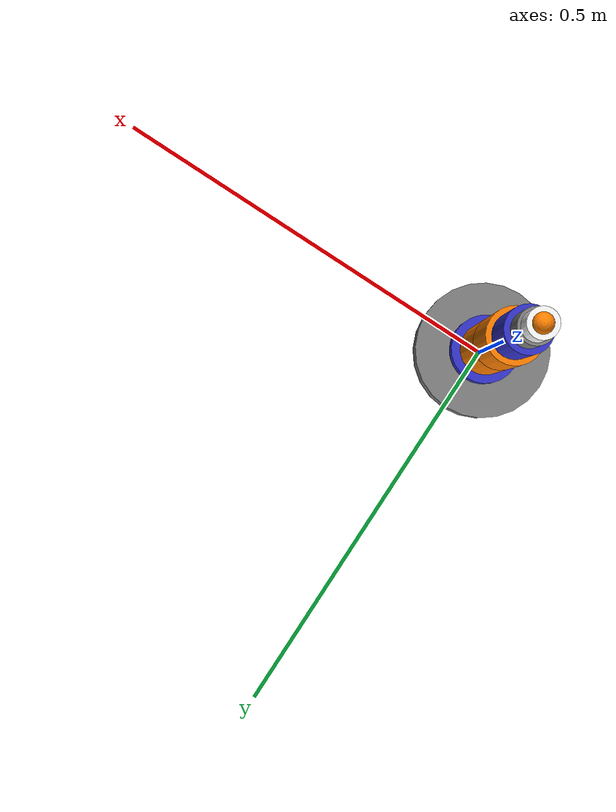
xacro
<?xml version="1.0"?>
<robot xmlns:xacro="http://www.ros.org/wiki/xacro" name="robot_arm">

  <!-- Robot Arm Properties -->
  <xacro:property name="base_height" value="0.1"/>
  <xacro:property name="base_radius" value="0.08"/>
  <xacro:property name="link1_length" value="0.3"/>
  <xacro:property name="link2_length" value="0.25"/>
  <xacro:property name="link3_length" value="0.2"/>
  <xacro:property name="link4_length" value="0.1"/>
  <xacro:property name="link5_length" value="0.08"/>
  <xacro:property name="link6_length" value="0.05"/>
  <xacro:property name="link_radius" value="0.03"/>
  <xacro:property name="joint_radius" value="0.04"/>
  <xacro:property name="joint_length" value="0.06"/>

  <!-- Materials -->
  <material name="grey">
    <color rgba="0.5 0.5 0.5 1.0"/>
  </material>
  <material name="blue">
    <color rgba="0.2 0.2 0.8 1.0"/>
  </material>
  <material name="orange">
    <color rgba="1.0 0.5 0.0 1.0"/>
  </material>
  <material name="white">
    <color rgba="1.0 1.0 1.0 1.0"/>
  </material>

  <!-- Base Link (Fixed to world) -->
  <link name="world"/>

  <joint name="world_joint" type="fixed">
    <parent link="world"/>
    <child link="base_link"/>
    <origin xyz="0 0 0" rpy="0 0 0"/>
  </joint>

  <link name="base_link">
    <visual>
      <geometry>
        <cylinder radius="${base_radius}" length="${base_height}"/>
      </geometry>
      <origin xyz="0 0 ${base_height/2}" rpy="0 0 0"/>
      <material name="grey"/>
    </visual>
    <collision>
      <geometry>
        <cylinder radius="${base_radius}" length="${base_height}"/>
      </geometry>
      <origin xyz="0 0 ${base_height/2}" rpy="0 0 0"/>
    </collision>
    <inertial>
      <mass value="5.0"/>
      <origin xyz="0 0 ${base_height/2}" rpy="0 0 0"/>
      <inertia ixx="0.01" ixy="0" ixz="0" iyy="0.01" iyz="0" izz="0.01"/>
    </inertial>
  </link>

  <!-- Joint 1: Base rotation (yaw) -->
  <joint name="joint1" type="revolute">
    <parent link="base_link"/>
    <child link="link1"/>
    <origin xyz="0 0 ${base_height}" rpy="0 0 0"/>
    <axis xyz="0 0 1"/>
    <limit lower="${-pi}" upper="${pi}" effort="100" velocity="1.0"/>
    <dynamics damping="0.5" friction="0.1"/>
  </joint>

  <link name="link1">
    <visual>
      <geometry>
        <cylinder radius="${joint_radius}" length="${joint_length}"/>
      </geometry>
      <origin xyz="0 0 ${joint_length/2}" rpy="0 0 0"/>
      <material name="blue"/>
    </visual>
    <collision>
      <geometry>
        <cylinder radius="${joint_radius}" length="${joint_length}"/>
      </geometry>
      <origin xyz="0 0 ${joint_length/2}" rpy="0 0 0"/>
    </collision>
    <inertial>
      <mass value="1.0"/>
      <origin xyz="0 0 ${joint_length/2}" rpy="0 0 0"/>
      <inertia ixx="0.001" ixy="0" ixz="0" iyy="0.001" iyz="0" izz="0.001"/>
    </inertial>
  </link>

  <!-- Joint 2: Shoulder (pitch) -->
  <joint name="joint2" type="revolute">
    <parent link="link1"/>
    <child link="link2"/>
    <origin xyz="0 0 ${joint_length}" rpy="0 0 0"/>
    <axis xyz="0 1 0"/>
    <limit lower="${-pi/2}" upper="${pi/2}" effort="100" velocity="1.0"/>
    <dynamics damping="0.5" friction="0.1"/>
  </joint>

  <link name="link2">
    <visual>
      <geometry>
        <cylinder radius="${link_radius}" length="${link1_length}"/>
      </geometry>
      <origin xyz="0 0 ${link1_length/2}" rpy="0 0 0"/>
      <material name="orange"/>
    </visual>
    <collision>
      <geometry>
        <cylinder radius="${link_radius}" length="${link1_length}"/>
      </geometry>
      <origin xyz="0 0 ${link1_length/2}" rpy="0 0 0"/>
    </collision>
    <inertial>
      <mass value="2.0"/>
      <origin xyz="0 0 ${link1_length/2}" rpy="0 0 0"/>
      <inertia ixx="0.02" ixy="0" ixz="0" iyy="0.02" iyz="0" izz="0.002"/>
    </inertial>
  </link>

  <!-- Joint 3: Elbow (pitch) -->
  <joint name="joint3" type="revolute">
    <parent link="link2"/>
    <child link="link3"/>
    <origin xyz="0 0 ${link1_length}" rpy="0 0 0"/>
    <axis xyz="0 1 0"/>
    <limit lower="${-pi*0.75}" upper="${pi*0.75}" effort="100" velocity="1.0"/>
    <dynamics damping="0.5" friction="0.1"/>
  </joint>

  <link name="link3">
    <visual>
      <geometry>
        <cylinder radius="${link_radius}" length="${link2_length}"/>
      </geometry>
      <origin xyz="0 0 ${link2_length/2}" rpy="0 0 0"/>
      <material name="orange"/>
    </visual>
    <collision>
      <geometry>
        <cylinder radius="${link_radius}" length="${link2_length}"/>
      </geometry>
      <origin xyz="0 0 ${link2_length/2}" rpy="0 0 0"/>
    </collision>
    <inertial>
      <mass value="1.5"/>
      <origin xyz="0 0 ${link2_length/2}" rpy="0 0 0"/>
      <inertia ixx="0.01" ixy="0" ixz="0" iyy="0.01" iyz="0" izz="0.001"/>
    </inertial>
  </link>

  <!-- Joint 4: Wrist 1 (pitch) -->
  <joint name="joint4" type="revolute">
    <parent link="link3"/>
    <child link="link4"/>
    <origin xyz="0 0 ${link2_length}" rpy="0 0 0"/>
    <axis xyz="0 1 0"/>
    <limit lower="${-pi}" upper="${pi}" effort="50" velocity="1.5"/>
    <dynamics damping="0.3" friction="0.1"/>
  </joint>

  <link name="link4">
    <visual>
      <geometry>
        <cylinder radius="${link_radius*0.8}" length="${link3_length}"/>
      </geometry>
      <origin xyz="0 0 ${link3_length/2}" rpy="0 0 0"/>
      <material name="blue"/>
    </visual>
    <collision>
      <geometry>
        <cylinder radius="${link_radius*0.8}" length="${link3_length}"/>
      </geometry>
      <origin xyz="0 0 ${link3_length/2}" rpy="0 0 0"/>
    </collision>
    <inertial>
      <mass value="0.8"/>
      <origin xyz="0 0 ${link3_length/2}" rpy="0 0 0"/>
      <inertia ixx="0.003" ixy="0" ixz="0" iyy="0.003" iyz="0" izz="0.0005"/>
    </inertial>
  </link>

  <!-- Joint 5: Wrist 2 (yaw) -->
  <joint name="joint5" type="revolute">
    <parent link="link4"/>
    <child link="link5"/>
    <origin xyz="0 0 ${link3_length}" rpy="0 0 0"/>
    <axis xyz="0 0 1"/>
    <limit lower="${-pi}" upper="${pi}" effort="30" velocity="2.0"/>
    <dynamics damping="0.2" friction="0.05"/>
  </joint>

  <link name="link5">
    <visual>
      <geometry>
        <cylinder radius="${link_radius*0.6}" length="${link4_length}"/>
      </geometry>
      <origin xyz="0 0 ${link4_length/2}" rpy="0 0 0"/>
      <material name="grey"/>
    </visual>
    <collision>
      <geometry>
        <cylinder radius="${link_radius*0.6}" length="${link4_length}"/>
      </geometry>
      <origin xyz="0 0 ${link4_length/2}" rpy="0 0 0"/>
    </collision>
    <inertial>
      <mass value="0.4"/>
      <origin xyz="0 0 ${link4_length/2}" rpy="0 0 0"/>
      <inertia ixx="0.001" ixy="0" ixz="0" iyy="0.001" iyz="0" izz="0.0002"/>
    </inertial>
  </link>

  <!-- Joint 6: Wrist 3 (roll) -->
  <joint name="joint6" type="revolute">
    <parent link="link5"/>
    <child link="link6"/>
    <origin xyz="0 0 ${link4_length}" rpy="0 0 0"/>
    <axis xyz="0 1 0"/>
    <limit lower="${-pi}" upper="${pi}" effort="20" velocity="2.5"/>
    <dynamics damping="0.1" friction="0.05"/>
  </joint>

  <link name="link6">
    <visual>
      <geometry>
        <cylinder radius="${link_radius*0.5}" length="${link5_length}"/>
      </geometry>
      <origin xyz="0 0 ${link5_length/2}" rpy="0 0 0"/>
      <material name="white"/>
    </visual>
    <collision>
      <geometry>
        <cylinder radius="${link_radius*0.5}" length="${link5_length}"/>
      </geometry>
      <origin xyz="0 0 ${link5_length/2}" rpy="0 0 0"/>
    </collision>
    <inertial>
      <mass value="0.2"/>
      <origin xyz="0 0 ${link5_length/2}" rpy="0 0 0"/>
      <inertia ixx="0.0003" ixy="0" ixz="0" iyy="0.0003" iyz="0" izz="0.0001"/>
    </inertial>
  </link>

  <!-- End Effector (Tool Center Point) -->
  <joint name="ee_joint" type="fixed">
    <parent link="link6"/>
    <child link="ee_link"/>
    <origin xyz="0 0 ${link5_length}" rpy="0 0 0"/>
  </joint>

  <link name="ee_link">
    <visual>
      <geometry>
        <sphere radius="0.01"/>
      </geometry>
      <material name="orange"/>
    </visual>
  </link>

  <!-- Include Gazebo-specific elements -->
  <xacro:include filename="$(find robot_description)/urdf/robot_arm.gazebo.xacro"/>

</robot>
